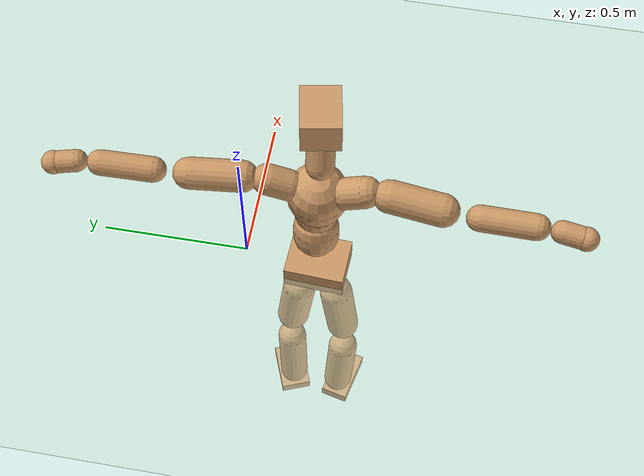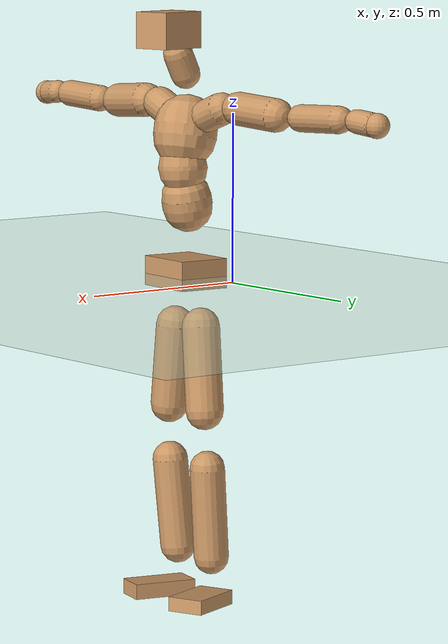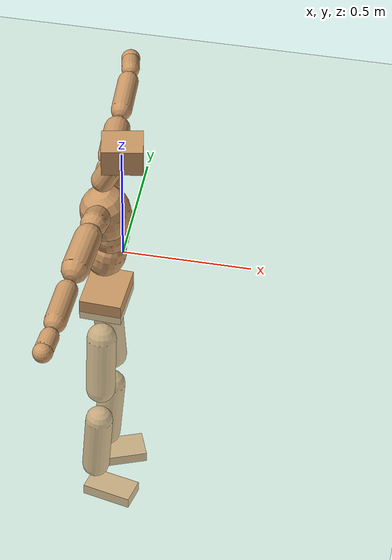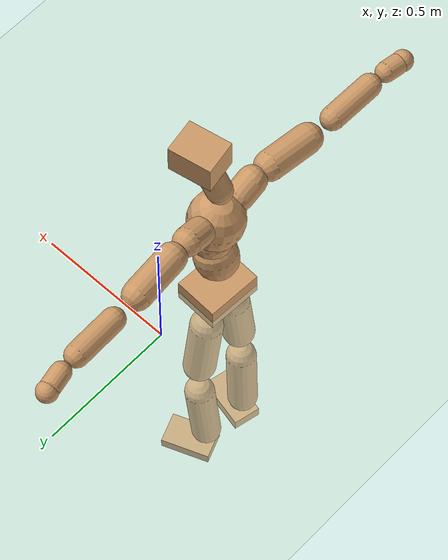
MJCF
<mujoco model="humanoid">
  <compiler coordinate="local" angle="radian"/>
  <default>
    <joint damping="0.0" armature="0.01" stiffness="0.0" limited="true"/>
    <geom conaffinity="1" condim="3" contype="7" margin="0.001" rgba="0.8 0.6 .4 1"/>
  </default>
  <asset>
    <texture type="skybox" builtin="gradient" rgb1=".4 .5 .6" rgb2="0 0 0" width="100" height="100"/>
    <texture builtin="flat" height="1278" mark="cross" markrgb="1 1 1" name="texgeom" random="0.01" rgb1="0.8 0.6 0.4" rgb2="0.8 0.6 0.4" type="cube" width="127"/>
    <texture builtin="checker" height="100" name="texplane" rgb1="0 0 0" rgb2="0.8 0.8 0.8" type="2d" width="100"/>
    <material name="MatPlane" reflectance="0.5" shininess="1" specular="1" texrepeat="60 60" texture="texplane"/>
    <material name="geom" texture="texgeom" texuniform="true"/>
  </asset>
  <worldbody>
    <light cutoff="100" diffuse="1 1 1" dir="-0 0 -1.3" directional="true" exponent="1" pos="0 0 1.3" specular=".1 .1 .1"/>
    <geom conaffinity="1" condim="3" name="floor" pos="0 0 0" rgba="0.8 0.9 0.8 1" size="100 100 .2" type="plane" material="MatPlane"/>
    <body name="Pelvis" pos="-0.0024 -0.2518 0.0157">
      <freejoint name="Pelvis"/>
      <geom type="box" contype="1" conaffinity="1" density="500" pos="-0.0117 0.0006 -0.0086" size="0.0804 0.1011 0.0445" quat="0.9997 0.0000 0.0000 -0.0259" name="Pelvis"/>
      <body name="L_Hip" pos="-0.023 0.0542 -0.0859">
        <joint name="L_Hip_x" type="hinge" pos="0 0 0" axis="1 0 0" stiffness="800" damping="80" armature="0.02" range="-180.0000 180.0000"/>
        <joint name="L_Hip_y" type="hinge" pos="0 0 0" axis="0 1 0" stiffness="800" damping="80" armature="0.02" range="-180.0000 180.0000"/>
        <joint name="L_Hip_z" type="hinge" pos="0 0 0" axis="0 0 1" stiffness="800" damping="80" armature="0.02" range="-180.0000 180.0000"/>
        <geom type="capsule" contype="1" conaffinity="1" density="500" fromto="0.0025 0.0097 -0.0838 0.0099 0.0388 -0.3353" size="0.0577" name="L_Hip"/>
        <body name="L_Knee" pos="0.0124 0.0485 -0.4191">
          <joint name="L_Knee_x" type="hinge" pos="0 0 0" axis="1 0 0" stiffness="800" damping="80" armature="0.02" range="-180.0000 180.0000"/>
          <joint name="L_Knee_y" type="hinge" pos="0 0 0" axis="0 1 0" stiffness="800" damping="80" armature="0.02" range="-180.0000 180.0000"/>
          <joint name="L_Knee_z" type="hinge" pos="0 0 0" axis="0 0 1" stiffness="800" damping="80" armature="0.02" range="-180.0000 180.0000"/>
          <geom type="capsule" contype="1" conaffinity="1" density="500" fromto="-0.0072 -0.0029 -0.0916 -0.0287 -0.0114 -0.3663" size="0.0532" name="L_Knee"/>
          <body name="L_Ankle" pos="-0.0359 -0.0143 -0.4578">
            <joint name="L_Ankle_x" type="hinge" pos="0 0 0" axis="1 0 0" stiffness="800" damping="80" armature="0.02" range="-180.0000 180.0000"/>
            <joint name="L_Ankle_y" type="hinge" pos="0 0 0" axis="0 1 0" stiffness="800" damping="80" armature="0.02" range="-180.0000 180.0000"/>
            <joint name="L_Ankle_z" type="hinge" pos="0 0 0" axis="0 0 1" stiffness="800" damping="80" armature="0.02" range="-180.0000 180.0000"/>
            <geom type="box" contype="1" conaffinity="1" density="500" pos="0.0643 0.0250 -0.0327" size="0.0899 0.0566 0.0218" quat="0.9829 0.0000 0.0000 0.1843" name="L_Ankle"/>
            <body name="L_Toe" pos="0.1287 0.05 -0.0655">
              <joint name="L_Toe_x" type="hinge" pos="0 0 0" axis="1 0 0" stiffness="500" damping="50" armature="0.02" range="-180.0000 180.0000"/>
              <joint name="L_Toe_y" type="hinge" pos="0 0 0" axis="0 1 0" stiffness="500" damping="50" armature="0.02" range="-180.0000 180.0000"/>
              <joint name="L_Toe_z" type="hinge" pos="0 0 0" axis="0 0 1" stiffness="500" damping="50" armature="0.02" range="-180.0000 180.0000"/>
              <geom type="box" contype="1" conaffinity="1" density="500" pos="0.0000 0.0000 0.0347" size="0.0011 0.0027 0.0012" quat="0.9821 0.0000 0.0000 0.1883" name="L_Toe"/>
            </body>
          </body>
        </body>
      </body>
      <body name="R_Hip" pos="-0.0196 -0.055 -0.0949">
        <joint name="R_Hip_x" type="hinge" pos="0 0 0" axis="1 0 0" stiffness="800" damping="80" armature="0.02" range="-180.0000 180.0000"/>
        <joint name="R_Hip_y" type="hinge" pos="0 0 0" axis="0 1 0" stiffness="800" damping="80" armature="0.02" range="-180.0000 180.0000"/>
        <joint name="R_Hip_z" type="hinge" pos="0 0 0" axis="0 0 1" stiffness="800" damping="80" armature="0.02" range="-180.0000 180.0000"/>
        <geom type="capsule" contype="1" conaffinity="1" density="500" fromto="-0.0003 -0.0100 -0.0823 -0.0010 -0.0399 -0.3293" size="0.0571" name="R_Hip"/>
        <body name="R_Knee" pos="-0.0013 -0.0499 -0.4116">
          <joint name="R_Knee_x" type="hinge" pos="0 0 0" axis="1 0 0" stiffness="800" damping="80" armature="0.02" range="-180.0000 180.0000"/>
          <joint name="R_Knee_y" type="hinge" pos="0 0 0" axis="0 1 0" stiffness="800" damping="80" armature="0.02" range="-180.0000 180.0000"/>
          <joint name="R_Knee_z" type="hinge" pos="0 0 0" axis="0 0 1" stiffness="800" damping="80" armature="0.02" range="-180.0000 180.0000"/>
          <geom type="capsule" contype="1" conaffinity="1" density="500" fromto="-0.0068 0.0040 -0.0901 -0.0270 0.0159 -0.3603" size="0.0539" name="R_Knee"/>
          <body name="R_Ankle" pos="-0.0338 0.0199 -0.4504">
            <joint name="R_Ankle_x" type="hinge" pos="0 0 0" axis="1 0 0" stiffness="800" damping="80" armature="0.02" range="-180.0000 180.0000"/>
            <joint name="R_Ankle_y" type="hinge" pos="0 0 0" axis="0 1 0" stiffness="800" damping="80" armature="0.02" range="-180.0000 180.0000"/>
            <joint name="R_Ankle_z" type="hinge" pos="0 0 0" axis="0 0 1" stiffness="800" damping="80" armature="0.02" range="-180.0000 180.0000"/>
            <geom type="box" contype="1" conaffinity="1" density="500" pos="0.0699 -0.0160 -0.0334" size="0.0974 0.0509 0.0232" quat="0.9937 0.0000 0.0000 -0.1121" name="R_Ankle"/>
            <body name="R_Toe" pos="0.1398 -0.032 -0.0667">
              <joint name="R_Toe_x" type="hinge" pos="0 0 0" axis="1 0 0" stiffness="500" damping="50" armature="0.02" range="-180.0000 180.0000"/>
              <joint name="R_Toe_y" type="hinge" pos="0 0 0" axis="0 1 0" stiffness="500" damping="50" armature="0.02" range="-180.0000 180.0000"/>
              <joint name="R_Toe_z" type="hinge" pos="0 0 0" axis="0 0 1" stiffness="500" damping="50" armature="0.02" range="-180.0000 180.0000"/>
              <geom type="box" contype="1" conaffinity="1" density="500" pos="0.0000 0.0000 0.0357" size="0.001 0.0025 0.0013" quat="0.9946 0.0000 0.0000 -0.1039" name="R_Toe"/>
            </body>
          </body>
        </body>
      </body>
      <body name="Torso" pos="-0.0277 0.0045 0.1292">
        <joint name="Torso_x" type="hinge" pos="0 0 0" axis="1 0 0" stiffness="1000" damping="100" armature="0.02" range="-180.0000 180.0000"/>
        <joint name="Torso_y" type="hinge" pos="0 0 0" axis="0 1 0" stiffness="1000" damping="100" armature="0.02" range="-180.0000 180.0000"/>
        <joint name="Torso_z" type="hinge" pos="0 0 0" axis="0 0 1" stiffness="1000" damping="100" armature="0.02" range="-180.0000 180.0000"/>
        <geom type="capsule" contype="1" conaffinity="1" density="500" fromto="0.0196 0.0033 0.0884 0.0131 0.0022 0.0590" size="0.0753" name="Torso"/>
        <body name="Spine" pos="0.0327 0.0055 0.1474">
          <joint name="Spine_x" type="hinge" pos="0 0 0" axis="1 0 0" stiffness="1000" damping="100" armature="0.02" range="-180.0000 180.0000"/>
          <joint name="Spine_y" type="hinge" pos="0 0 0" axis="0 1 0" stiffness="1000" damping="100" armature="0.02" range="-180.0000 180.0000"/>
          <joint name="Spine_z" type="hinge" pos="0 0 0" axis="0 0 1" stiffness="1000" damping="100" armature="0.02" range="-180.0000 180.0000"/>
          <geom type="capsule" contype="1" conaffinity="1" density="500" fromto="0.0000 -0.0017 0.0365 0.0000 -0.0011 0.0243" size="0.0734" name="Spine"/>
          <body name="Chest" pos="0.0001 -0.0028 0.0608">
            <joint name="Chest_x" type="hinge" pos="0 0 0" axis="1 0 0" stiffness="1000" damping="100" armature="0.02" range="-180.0000 180.0000"/>
            <joint name="Chest_y" type="hinge" pos="0 0 0" axis="0 1 0" stiffness="1000" damping="100" armature="0.02" range="-180.0000 180.0000"/>
            <joint name="Chest_z" type="hinge" pos="0 0 0" axis="0 0 1" stiffness="1000" damping="100" armature="0.02" range="-180.0000 180.0000"/>
            <geom type="capsule" contype="1" conaffinity="1" density="500" fromto="-0.0169 -0.0050 0.0931 -0.0112 -0.0034 0.0620" size="0.0954" name="Chest"/>
            <body name="Neck" pos="-0.0316 -0.0139 0.2271">
              <joint name="Neck_x" type="hinge" pos="0 0 0" axis="1 0 0" stiffness="500" damping="50" armature="0.02" range="-180.0000 180.0000"/>
              <joint name="Neck_y" type="hinge" pos="0 0 0" axis="0 1 0" stiffness="500" damping="50" armature="0.02" range="-180.0000 180.0000"/>
              <joint name="Neck_z" type="hinge" pos="0 0 0" axis="0 0 1" stiffness="500" damping="50" armature="0.02" range="-180.0000 180.0000"/>
              <geom type="capsule" contype="1" conaffinity="1" density="500" fromto="0.0107 0.0016 0.0205 0.0429 0.0064 0.0821" size="0.0443" name="Neck"/>
              <body name="Head" pos="0.0537 0.0081 0.1026">
                <joint name="Head_x" type="hinge" pos="0 0 0" axis="1 0 0" stiffness="500" damping="50" armature="0.02" range="-180.0000 180.0000"/>
                <joint name="Head_y" type="hinge" pos="0 0 0" axis="0 1 0" stiffness="500" damping="50" armature="0.02" range="-180.0000 180.0000"/>
                <joint name="Head_z" type="hinge" pos="0 0 0" axis="0 0 1" stiffness="500" damping="50" armature="0.02" range="-180.0000 180.0000"/>
                <geom type="box" contype="1" conaffinity="1" density="500" pos="0.0278 0.0050 0.0523" size="0.0766 0.0608 0.0544" quat="0.9960 0.0000 0.0000 0.0893" name="Head"/>
              </body>
            </body>
            <body name="L_Thorax" pos="-0.0253 0.0611 0.1194">
              <joint name="L_Thorax_x" type="hinge" pos="0 0 0" axis="1 0 0" stiffness="500" damping="50" armature="0.02" range="-180.0000 180.0000"/>
              <joint name="L_Thorax_y" type="hinge" pos="0 0 0" axis="0 1 0" stiffness="500" damping="50" armature="0.02" range="-180.0000 180.0000"/>
              <joint name="L_Thorax_z" type="hinge" pos="0 0 0" axis="0 0 1" stiffness="500" damping="50" armature="0.02" range="-180.0000 180.0000"/>
              <geom type="capsule" contype="1" conaffinity="1" density="500" fromto="-0.0022 0.0215 0.0083 -0.0088 0.0860 0.0332" size="0.0491" name="L_Thorax"/>
              <body name="L_Shoulder" pos="-0.011 0.1075 0.0415">
                <joint name="L_Shoulder_x" type="hinge" pos="0 0 0" axis="1 0 0" stiffness="500" damping="50" armature="0.02" range="-720.0000 720.0000"/>
                <joint name="L_Shoulder_y" type="hinge" pos="0 0 0" axis="0 1 0" stiffness="500" damping="50" armature="0.02" range="-720.0000 720.0000"/>
                <joint name="L_Shoulder_z" type="hinge" pos="0 0 0" axis="0 0 1" stiffness="500" damping="50" armature="0.02" range="-720.0000 720.0000"/>
                <geom type="capsule" contype="1" conaffinity="1" density="500" fromto="-0.0034 0.0544 -0.0033 -0.0136 0.2177 -0.0131" size="0.05" name="L_Shoulder"/>
                <body name="L_Elbow" pos="-0.017 0.2721 -0.0163">
                  <joint name="L_Elbow_x" type="hinge" pos="0 0 0" axis="1 0 0" stiffness="500" damping="50" armature="0.02" range="-720.0000 720.0000"/>
                  <joint name="L_Elbow_y" type="hinge" pos="0 0 0" axis="0 1 0" stiffness="500" damping="50" armature="0.02" range="-720.0000 720.0000"/>
                  <joint name="L_Elbow_z" type="hinge" pos="0 0 0" axis="0 0 1" stiffness="500" damping="50" armature="0.02" range="-720.0000 720.0000"/>
                  <geom type="capsule" contype="1" conaffinity="1" density="500" fromto="-0.0022 0.0549 0.0019 -0.0088 0.2195 0.0075" size="0.0401" name="L_Elbow"/>
                  <body name="L_Wrist" pos="-0.011 0.2743 0.0094">
                    <joint name="L_Wrist_x" type="hinge" pos="0 0 0" axis="1 0 0" stiffness="300" damping="30" armature="0.02" range="-180.0000 180.0000"/>
                    <joint name="L_Wrist_y" type="hinge" pos="0 0 0" axis="0 1 0" stiffness="300" damping="30" armature="0.02" range="-180.0000 180.0000"/>
                    <joint name="L_Wrist_z" type="hinge" pos="0 0 0" axis="0 0 1" stiffness="300" damping="30" armature="0.02" range="-180.0000 180.0000"/>
                    <geom type="capsule" contype="1" conaffinity="1" density="500" fromto="-0.0033 0.0179 -0.0021 -0.0131 0.0717 -0.0084" size="0.0349" name="L_Wrist"/>
                    <body name="L_Hand" pos="-0.0164 0.0896 -0.0104">
                      <joint name="L_Hand_x" type="hinge" pos="0 0 0" axis="1 0 0" stiffness="300" damping="30" armature="0.02" range="-180.0000 180.0000"/>
                      <joint name="L_Hand_y" type="hinge" pos="0 0 0" axis="0 1 0" stiffness="300" damping="30" armature="0.02" range="-180.0000 180.0000"/>
                      <joint name="L_Hand_z" type="hinge" pos="0 0 0" axis="0 0 1" stiffness="300" damping="30" armature="0.02" range="-180.0000 180.0000"/>
                      <geom type="sphere" contype="1" conaffinity="1" density="500" size="0.0366" pos="0.0000 0.0000 0.0000" name="L_Hand"/>
                    </body>
                  </body>
                </body>
              </body>
            </body>
            <body name="R_Thorax" pos="-0.0274 -0.0724 0.1188">
              <joint name="R_Thorax_x" type="hinge" pos="0 0 0" axis="1 0 0" stiffness="500" damping="50" armature="0.02" range="-180.0000 180.0000"/>
              <joint name="R_Thorax_y" type="hinge" pos="0 0 0" axis="0 1 0" stiffness="500" damping="50" armature="0.02" range="-180.0000 180.0000"/>
              <joint name="R_Thorax_z" type="hinge" pos="0 0 0" axis="0 0 1" stiffness="500" damping="50" armature="0.02" range="-180.0000 180.0000"/>
              <geom type="capsule" contype="1" conaffinity="1" density="500" fromto="-0.0003 -0.0199 0.0085 -0.0011 -0.0797 0.0338" size="0.0499" name="R_Thorax"/>
              <body name="R_Shoulder" pos="-0.0013 -0.0997 0.0423">
                <joint name="R_Shoulder_x" type="hinge" pos="0 0 0" axis="1 0 0" stiffness="500" damping="50" armature="0.02" range="-720.0000 720.0000"/>
                <joint name="R_Shoulder_y" type="hinge" pos="0 0 0" axis="0 1 0" stiffness="500" damping="50" armature="0.02" range="-720.0000 720.0000"/>
                <joint name="R_Shoulder_z" type="hinge" pos="0 0 0" axis="0 0 1" stiffness="500" damping="50" armature="0.02" range="-720.0000 720.0000"/>
                <geom type="capsule" contype="1" conaffinity="1" density="500" fromto="-0.0048 -0.0541 -0.0038 -0.0190 -0.2162 -0.0151" size="0.0517" name="R_Shoulder"/>
                <body name="R_Elbow" pos="-0.0238 -0.2703 -0.0189">
                  <joint name="R_Elbow_x" type="hinge" pos="0 0 0" axis="1 0 0" stiffness="500" damping="50" armature="0.02" range="-720.0000 720.0000"/>
                  <joint name="R_Elbow_y" type="hinge" pos="0 0 0" axis="0 1 0" stiffness="500" damping="50" armature="0.02" range="-720.0000 720.0000"/>
                  <joint name="R_Elbow_z" type="hinge" pos="0 0 0" axis="0 0 1" stiffness="500" damping="50" armature="0.02" range="-720.0000 720.0000"/>
                  <geom type="capsule" contype="1" conaffinity="1" density="500" fromto="-0.0018 -0.0565 0.0021 -0.0073 -0.2261 0.0085" size="0.0409" name="R_Elbow"/>
                  <body name="R_Wrist" pos="-0.0091 -0.2826 0.0106">
                    <joint name="R_Wrist_x" type="hinge" pos="0 0 0" axis="1 0 0" stiffness="300" damping="30" armature="0.02" range="-180.0000 180.0000"/>
                    <joint name="R_Wrist_y" type="hinge" pos="0 0 0" axis="0 1 0" stiffness="300" damping="30" armature="0.02" range="-180.0000 180.0000"/>
                    <joint name="R_Wrist_z" type="hinge" pos="0 0 0" axis="0 0 1" stiffness="300" damping="30" armature="0.02" range="-180.0000 180.0000"/>
                    <geom type="capsule" contype="1" conaffinity="1" density="500" fromto="-0.0021 -0.0183 -0.0017 -0.0083 -0.0732 -0.0067" size="0.0354" name="R_Wrist"/>
                    <body name="R_Hand" pos="-0.0103 -0.0914 -0.0084">
                      <joint name="R_Hand_x" type="hinge" pos="0 0 0" axis="1 0 0" stiffness="300" damping="30" armature="0.02" range="-180.0000 180.0000"/>
                      <joint name="R_Hand_y" type="hinge" pos="0 0 0" axis="0 1 0" stiffness="300" damping="30" armature="0.02" range="-180.0000 180.0000"/>
                      <joint name="R_Hand_z" type="hinge" pos="0 0 0" axis="0 0 1" stiffness="300" damping="30" armature="0.02" range="-180.0000 180.0000"/>
                      <geom type="sphere" contype="1" conaffinity="1" density="500" size="0.0371" pos="0.0000 0.0000 0.0000" name="R_Hand"/>
                    </body>
                  </body>
                </body>
              </body>
            </body>
          </body>
        </body>
      </body>
    </body>
  </worldbody>
  <actuator>
    <motor name="L_Hip_x" joint="L_Hip_x" gear="500"/>
    <motor name="L_Hip_y" joint="L_Hip_y" gear="500"/>
    <motor name="L_Hip_z" joint="L_Hip_z" gear="500"/>
    <motor name="L_Knee_x" joint="L_Knee_x" gear="500"/>
    <motor name="L_Knee_y" joint="L_Knee_y" gear="500"/>
    <motor name="L_Knee_z" joint="L_Knee_z" gear="500"/>
    <motor name="L_Ankle_x" joint="L_Ankle_x" gear="500"/>
    <motor name="L_Ankle_y" joint="L_Ankle_y" gear="500"/>
    <motor name="L_Ankle_z" joint="L_Ankle_z" gear="500"/>
    <motor name="L_Toe_x" joint="L_Toe_x" gear="500"/>
    <motor name="L_Toe_y" joint="L_Toe_y" gear="500"/>
    <motor name="L_Toe_z" joint="L_Toe_z" gear="500"/>
    <motor name="R_Hip_x" joint="R_Hip_x" gear="500"/>
    <motor name="R_Hip_y" joint="R_Hip_y" gear="500"/>
    <motor name="R_Hip_z" joint="R_Hip_z" gear="500"/>
    <motor name="R_Knee_x" joint="R_Knee_x" gear="500"/>
    <motor name="R_Knee_y" joint="R_Knee_y" gear="500"/>
    <motor name="R_Knee_z" joint="R_Knee_z" gear="500"/>
    <motor name="R_Ankle_x" joint="R_Ankle_x" gear="500"/>
    <motor name="R_Ankle_y" joint="R_Ankle_y" gear="500"/>
    <motor name="R_Ankle_z" joint="R_Ankle_z" gear="500"/>
    <motor name="R_Toe_x" joint="R_Toe_x" gear="500"/>
    <motor name="R_Toe_y" joint="R_Toe_y" gear="500"/>
    <motor name="R_Toe_z" joint="R_Toe_z" gear="500"/>
    <motor name="Torso_x" joint="Torso_x" gear="500"/>
    <motor name="Torso_y" joint="Torso_y" gear="500"/>
    <motor name="Torso_z" joint="Torso_z" gear="500"/>
    <motor name="Spine_x" joint="Spine_x" gear="500"/>
    <motor name="Spine_y" joint="Spine_y" gear="500"/>
    <motor name="Spine_z" joint="Spine_z" gear="500"/>
    <motor name="Chest_x" joint="Chest_x" gear="500"/>
    <motor name="Chest_y" joint="Chest_y" gear="500"/>
    <motor name="Chest_z" joint="Chest_z" gear="500"/>
    <motor name="Neck_x" joint="Neck_x" gear="500"/>
    <motor name="Neck_y" joint="Neck_y" gear="500"/>
    <motor name="Neck_z" joint="Neck_z" gear="500"/>
    <motor name="Head_x" joint="Head_x" gear="500"/>
    <motor name="Head_y" joint="Head_y" gear="500"/>
    <motor name="Head_z" joint="Head_z" gear="500"/>
    <motor name="L_Thorax_x" joint="L_Thorax_x" gear="500"/>
    <motor name="L_Thorax_y" joint="L_Thorax_y" gear="500"/>
    <motor name="L_Thorax_z" joint="L_Thorax_z" gear="500"/>
    <motor name="L_Shoulder_x" joint="L_Shoulder_x" gear="500"/>
    <motor name="L_Shoulder_y" joint="L_Shoulder_y" gear="500"/>
    <motor name="L_Shoulder_z" joint="L_Shoulder_z" gear="500"/>
    <motor name="L_Elbow_x" joint="L_Elbow_x" gear="500"/>
    <motor name="L_Elbow_y" joint="L_Elbow_y" gear="500"/>
    <motor name="L_Elbow_z" joint="L_Elbow_z" gear="500"/>
    <motor name="L_Wrist_x" joint="L_Wrist_x" gear="500"/>
    <motor name="L_Wrist_y" joint="L_Wrist_y" gear="500"/>
    <motor name="L_Wrist_z" joint="L_Wrist_z" gear="500"/>
    <motor name="L_Hand_x" joint="L_Hand_x" gear="500"/>
    <motor name="L_Hand_y" joint="L_Hand_y" gear="500"/>
    <motor name="L_Hand_z" joint="L_Hand_z" gear="500"/>
    <motor name="R_Thorax_x" joint="R_Thorax_x" gear="500"/>
    <motor name="R_Thorax_y" joint="R_Thorax_y" gear="500"/>
    <motor name="R_Thorax_z" joint="R_Thorax_z" gear="500"/>
    <motor name="R_Shoulder_x" joint="R_Shoulder_x" gear="500"/>
    <motor name="R_Shoulder_y" joint="R_Shoulder_y" gear="500"/>
    <motor name="R_Shoulder_z" joint="R_Shoulder_z" gear="500"/>
    <motor name="R_Elbow_x" joint="R_Elbow_x" gear="500"/>
    <motor name="R_Elbow_y" joint="R_Elbow_y" gear="500"/>
    <motor name="R_Elbow_z" joint="R_Elbow_z" gear="500"/>
    <motor name="R_Wrist_x" joint="R_Wrist_x" gear="500"/>
    <motor name="R_Wrist_y" joint="R_Wrist_y" gear="500"/>
    <motor name="R_Wrist_z" joint="R_Wrist_z" gear="500"/>
    <motor name="R_Hand_x" joint="R_Hand_x" gear="500"/>
    <motor name="R_Hand_y" joint="R_Hand_y" gear="500"/>
    <motor name="R_Hand_z" joint="R_Hand_z" gear="500"/>
  </actuator>
  <contact>
    <exclude body1="Torso" body2="Chest"/>
    <exclude body1="Head" body2="Chest"/>
    <exclude body1="R_Knee" body2="R_Toe"/>
    <exclude body1="R_Knee" body2="L_Ankle"/>
    <exclude body1="R_Knee" body2="L_Toe"/>
    <exclude body1="L_Knee" body2="L_Toe"/>
    <exclude body1="L_Knee" body2="R_Ankle"/>
    <exclude body1="L_Knee" body2="R_Toe"/>
    <exclude body1="L_Shoulder" body2="Chest"/>
    <exclude body1="R_Shoulder" body2="Chest"/>
  </contact>
  <sensor/>
  <size njmax="700" nconmax="700"/>
</mujoco>
